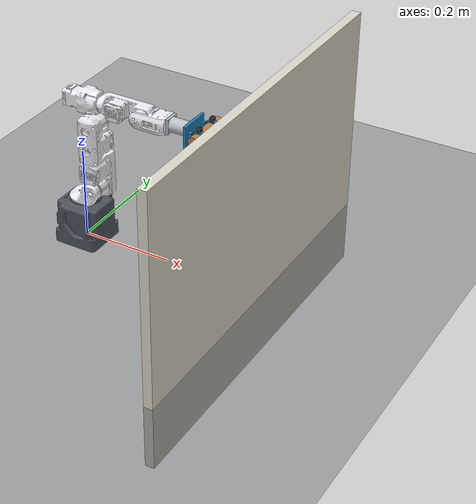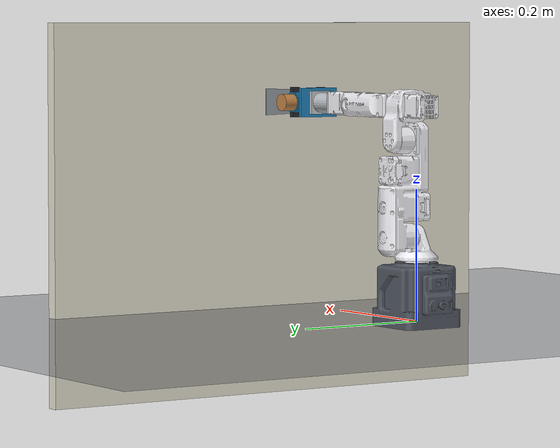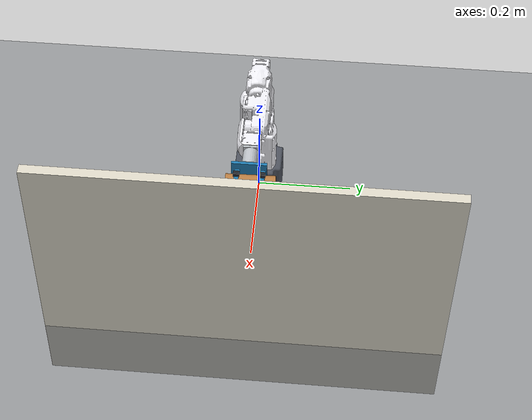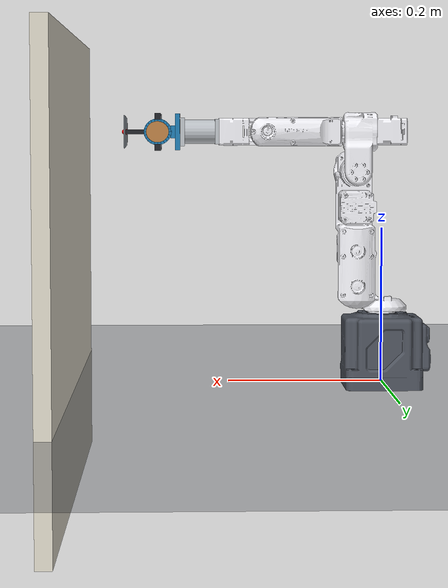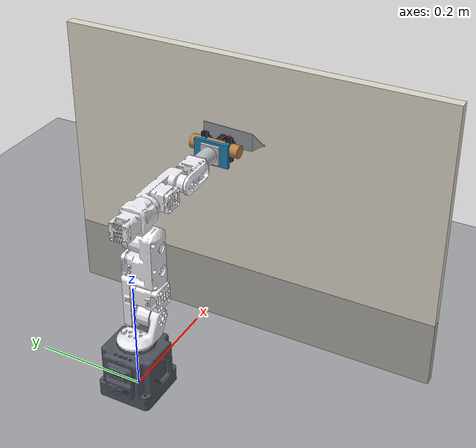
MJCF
<mujoco model="dummy_wall_trowel_SIM_ASSUMPTIONS_NOT_CALIBRATED">
  <!-- 由 tools/modeling/build_dummy_v2.py 生成，请勿手改。运动学 = V2 固件 DH；质量/惯量 = CAD 体积×估计密度 + 资料质量；执行器 = 资料额定值推算。均未经实机辨识。 -->
  <compiler angle="radian" meshdir="../../models/meshes_v2/" boundinertia="1e-07"/>

  <option integrator="implicitfast"/>

  <visual>
    <global offwidth="960" offheight="720"/>
  </visual>

  <default>
    <geom contype="0" conaffinity="0"/>
  </default>

  <asset>
    <mesh name="base_link" file="base_link.stl" scale="0.001 0.001 0.001" inertia="shell"/>
    <mesh name="link1" file="link1.stl" scale="0.001 0.001 0.001" inertia="shell"/>
    <mesh name="link2" file="link2.stl" scale="0.001 0.001 0.001" inertia="shell"/>
    <mesh name="link3" file="link3.stl" scale="0.001 0.001 0.001" inertia="shell"/>
    <mesh name="link4" file="link4.stl" scale="0.001 0.001 0.001" inertia="shell"/>
    <mesh name="link5" file="link5.stl" scale="0.001 0.001 0.001" inertia="shell"/>
    <mesh name="link6" file="link6.stl" scale="0.001 0.001 0.001" inertia="shell"/>
    <mesh name="handle_geom_mesh" vertex="0.0426612 0.041 0 0.0426612 0.0408909 0.00156631 0.0426612 0.0405656 0.00310583 0.0426612 0.0400295 0.0045922 0.0426612 0.0392918 0.006 0.0426612 0.0383653 0.00730514 0.0426612 0.0372656 0.00848528 0.0426612 0.0360117 0.00952024 0.0426612 0.034625 0.0103923 0.0426612 0.0331292 0.0110866 0.0426612 0.0315499 0.0115911 0.0426612 0.0299142 0.0118973 0.0426612 0.02825 0.012 0.0426612 0.0265858 0.0118973 0.0426612 0.0249501 0.0115911 0.0426612 0.0233708 0.0110866 0.0426612 0.021875 0.0103923 0.0426612 0.0204883 0.00952024 0.0426612 0.0192344 0.00848528 0.0426612 0.0181347 0.00730514 0.0426612 0.0172082 0.006 0.0426612 0.0164705 0.0045922 0.0426612 0.0159344 0.00310583 0.0426612 0.0156091 0.00156631 0.0426612 0.0155 1.46958e-18 0.0426612 0.0156091 -0.00156631 0.0426612 0.0159344 -0.00310583 0.0426612 0.0164705 -0.0045922 0.0426612 0.0172082 -0.006 0.0426612 0.0181347 -0.00730514 0.0426612 0.0192344 -0.00848528 0.0426612 0.0204883 -0.00952024 0.0426612 0.021875 -0.0103923 0.0426612 0.0233708 -0.0110866 0.0426612 0.0249501 -0.0115911 0.0426612 0.0265858 -0.0118973 0.0426612 0.02825 -0.012 0.0426612 0.0299142 -0.0118973 0.0426612 0.0315499 -0.0115911 0.0426612 0.0331292 -0.0110866 0.0426612 0.034625 -0.0103923 0.0426612 0.0360117 -0.00952024 0.0426612 0.0372656 -0.00848528 0.0426612 0.0383653 -0.00730514 0.0426612 0.0392918 -0.006 0.0426612 0.0400295 -0.0045922 0.0426612 0.0405656 -0.00310583 0.0426612 0.0408909 -0.00156631 -0.0523388 0.0425 0 -0.0523388 0.0423781 0.00172947 -0.0523388 0.0420144 0.00342935 -0.0523388 0.0414153 0.00507056 -0.0523388 0.0405909 0.006625 -0.0523388 0.0395553 0.00806609 -0.0523388 0.0383263 0.00936916 -0.0523388 0.0369249 0.0105119 -0.0523388 0.035375 0.0114748 -0.0523388 0.0337032 0.0122414 -0.0523388 0.0319382 0.0127985 -0.0523388 0.03011 0.0131366 -0.0523388 0.02825 0.01325 -0.0523388 0.02639 0.0131366 -0.0523388 0.0245618 0.0127985 -0.0523388 0.0227968 0.0122414 -0.0523388 0.021125 0.0114748 -0.0523388 0.0195751 0.0105119 -0.0523388 0.0181737 0.00936916 -0.0523388 0.0169447 0.00806609 -0.0523388 0.0159091 0.006625 -0.0523388 0.0150847 0.00507056 -0.0523388 0.0144856 0.00342935 -0.0523388 0.0141219 0.00172947 -0.0523388 0.014 1.62266e-18 -0.0523388 0.0141219 -0.00172947 -0.0523388 0.0144856 -0.00342935 -0.0523388 0.0150847 -0.00507056 -0.0523388 0.0159091 -0.006625 -0.0523388 0.0169447 -0.00806609 -0.0523388 0.0181737 -0.00936916 -0.0523388 0.0195751 -0.0105119 -0.0523388 0.021125 -0.0114748 -0.0523388 0.0227968 -0.0122414 -0.0523388 0.0245618 -0.0127985 -0.0523388 0.02639 -0.0131366 -0.0523388 0.02825 -0.01325 -0.0523388 0.03011 -0.0131366 -0.0523388 0.0319382 -0.0127985 -0.0523388 0.0337032 -0.0122414 -0.0523388 0.035375 -0.0114748 -0.0523388 0.0369249 -0.0105119 -0.0523388 0.0383263 -0.00936916 -0.0523388 0.0395553 -0.00806609 -0.0523388 0.0405909 -0.006625 -0.0523388 0.0414153 -0.00507056 -0.0523388 0.0420144 -0.00342935 -0.0523388 0.0423781 -0.00172947"/>
    <mesh name="clamp_0_0_mesh" vertex="-0.0315 0.0423999 0 -0.0315 0.0419178 0.00342071 -0.0315 0.0458999 0 -0.0315 0.0452985 0.00432657 -0.0225 0.0423999 0 -0.0225 0.0419178 0.00342071 -0.0225 0.0458999 0 -0.0225 0.0452985 0.00432657"/>
    <mesh name="clamp_0_1_mesh" vertex="-0.0315 0.0419178 0.00342071 -0.0315 0.0405042 0.0066083 -0.0315 0.0452985 0.00432657 -0.0315 0.0435353 0.0083583 -0.0225 0.0419178 0.00342071 -0.0225 0.0405042 0.0066083 -0.0225 0.0452985 0.00432657 -0.0225 0.0435353 0.0083583"/>
    <mesh name="clamp_0_2_mesh" vertex="-0.0315 0.0405042 0.0066083 -0.0315 0.0382555 0.00934554 -0.0315 0.0435353 0.0083583 -0.0315 0.0407304 0.0118204 -0.0225 0.0405042 0.0066083 -0.0225 0.0382555 0.00934554 -0.0225 0.0435353 0.0083583 -0.0225 0.0407304 0.0118204"/>
    <mesh name="clamp_0_3_mesh" vertex="-0.0315 0.0382555 0.00934554 -0.0315 0.035325 0.0114459 -0.0315 0.0407304 0.0118204 -0.0315 0.037075 0.014477 -0.0225 0.0382555 0.00934554 -0.0225 0.035325 0.0114459 -0.0225 0.0407304 0.0118204 -0.0225 0.037075 0.014477"/>
    <mesh name="clamp_0_4_mesh" vertex="-0.0315 0.035325 0.0114459 -0.0315 0.0319123 0.0127663 -0.0315 0.037075 0.014477 -0.0315 0.0328181 0.016147 -0.0225 0.035325 0.0114459 -0.0225 0.0319123 0.0127663 -0.0225 0.037075 0.014477 -0.0225 0.0328181 0.016147"/>
    <mesh name="clamp_0_5_mesh" vertex="-0.0315 0.0319123 0.0127663 -0.0315 0.0284198 0.0132156 -0.0315 0.0328181 0.016147 -0.0315 0.0284618 0.0167154 -0.0225 0.0319123 0.0127663 -0.0225 0.0284198 0.0132156 -0.0225 0.0328181 0.016147 -0.0225 0.0284618 0.0167154"/>
    <mesh name="clamp_0_6_mesh" vertex="-0.0315 0.0280802 0.0132156 -0.0315 0.0245877 0.0127663 -0.0315 0.0280382 0.0167154 -0.0315 0.0236819 0.016147 -0.0225 0.0280802 0.0132156 -0.0225 0.0245877 0.0127663 -0.0225 0.0280382 0.0167154 -0.0225 0.0236819 0.016147"/>
    <mesh name="clamp_0_7_mesh" vertex="-0.0315 0.0245877 0.0127663 -0.0315 0.021175 0.0114459 -0.0315 0.0236819 0.016147 -0.0315 0.019425 0.014477 -0.0225 0.0245877 0.0127663 -0.0225 0.021175 0.0114459 -0.0225 0.0236819 0.016147 -0.0225 0.019425 0.014477"/>
    <mesh name="clamp_0_8_mesh" vertex="-0.0315 0.021175 0.0114459 -0.0315 0.0182445 0.00934554 -0.0315 0.019425 0.014477 -0.0315 0.0157696 0.0118204 -0.0225 0.021175 0.0114459 -0.0225 0.0182445 0.00934554 -0.0225 0.019425 0.014477 -0.0225 0.0157696 0.0118204"/>
    <mesh name="clamp_0_9_mesh" vertex="-0.0315 0.0182445 0.00934554 -0.0315 0.0159958 0.0066083 -0.0315 0.0157696 0.0118204 -0.0315 0.0129647 0.0083583 -0.0225 0.0182445 0.00934554 -0.0225 0.0159958 0.0066083 -0.0225 0.0157696 0.0118204 -0.0225 0.0129647 0.0083583"/>
    <mesh name="clamp_0_10_mesh" vertex="-0.0315 0.0159958 0.0066083 -0.0315 0.0145822 0.00342071 -0.0315 0.0129647 0.0083583 -0.0315 0.0112015 0.00432657 -0.0225 0.0159958 0.0066083 -0.0225 0.0145822 0.00342071 -0.0225 0.0129647 0.0083583 -0.0225 0.0112015 0.00432657"/>
    <mesh name="clamp_0_11_mesh" vertex="-0.0315 0.0145822 0.00342071 -0.0315 0.0141001 1.61857e-18 -0.0315 0.0112015 0.00432657 -0.0315 0.0106001 2.04719e-18 -0.0225 0.0145822 0.00342071 -0.0225 0.0141001 1.61857e-18 -0.0225 0.0112015 0.00432657 -0.0225 0.0106001 2.04719e-18"/>
    <mesh name="clamp_0_12_mesh" vertex="-0.0315 0.0141001 1.61857e-18 -0.0315 0.0145822 -0.00342071 -0.0315 0.0106001 2.04719e-18 -0.0315 0.0112015 -0.00432657 -0.0225 0.0141001 1.61857e-18 -0.0225 0.0145822 -0.00342071 -0.0225 0.0106001 2.04719e-18 -0.0225 0.0112015 -0.00432657"/>
    <mesh name="clamp_0_13_mesh" vertex="-0.0315 0.0145822 -0.00342071 -0.0315 0.0159958 -0.0066083 -0.0315 0.0112015 -0.00432657 -0.0315 0.0129647 -0.0083583 -0.0225 0.0145822 -0.00342071 -0.0225 0.0159958 -0.0066083 -0.0225 0.0112015 -0.00432657 -0.0225 0.0129647 -0.0083583"/>
    <mesh name="clamp_0_14_mesh" vertex="-0.0315 0.0159958 -0.0066083 -0.0315 0.0182445 -0.00934554 -0.0315 0.0129647 -0.0083583 -0.0315 0.0157696 -0.0118204 -0.0225 0.0159958 -0.0066083 -0.0225 0.0182445 -0.00934554 -0.0225 0.0129647 -0.0083583 -0.0225 0.0157696 -0.0118204"/>
    <mesh name="clamp_0_15_mesh" vertex="-0.0315 0.0182445 -0.00934554 -0.0315 0.021175 -0.0114459 -0.0315 0.0157696 -0.0118204 -0.0315 0.019425 -0.014477 -0.0225 0.0182445 -0.00934554 -0.0225 0.021175 -0.0114459 -0.0225 0.0157696 -0.0118204 -0.0225 0.019425 -0.014477"/>
    <mesh name="clamp_0_16_mesh" vertex="-0.0315 0.021175 -0.0114459 -0.0315 0.0245877 -0.0127663 -0.0315 0.019425 -0.014477 -0.0315 0.0236819 -0.016147 -0.0225 0.021175 -0.0114459 -0.0225 0.0245877 -0.0127663 -0.0225 0.019425 -0.014477 -0.0225 0.0236819 -0.016147"/>
    <mesh name="clamp_0_17_mesh" vertex="-0.0315 0.0245877 -0.0127663 -0.0315 0.0280802 -0.0132156 -0.0315 0.0236819 -0.016147 -0.0315 0.0280382 -0.0167154 -0.0225 0.0245877 -0.0127663 -0.0225 0.0280802 -0.0132156 -0.0225 0.0236819 -0.016147 -0.0225 0.0280382 -0.0167154"/>
    <mesh name="clamp_0_18_mesh" vertex="-0.0315 0.0284198 -0.0132156 -0.0315 0.0319123 -0.0127663 -0.0315 0.0284618 -0.0167154 -0.0315 0.0328181 -0.016147 -0.0225 0.0284198 -0.0132156 -0.0225 0.0319123 -0.0127663 -0.0225 0.0284618 -0.0167154 -0.0225 0.0328181 -0.016147"/>
    <mesh name="clamp_0_19_mesh" vertex="-0.0315 0.0319123 -0.0127663 -0.0315 0.035325 -0.0114459 -0.0315 0.0328181 -0.016147 -0.0315 0.037075 -0.014477 -0.0225 0.0319123 -0.0127663 -0.0225 0.035325 -0.0114459 -0.0225 0.0328181 -0.016147 -0.0225 0.037075 -0.014477"/>
    <mesh name="clamp_0_20_mesh" vertex="-0.0315 0.035325 -0.0114459 -0.0315 0.0382555 -0.00934554 -0.0315 0.037075 -0.014477 -0.0315 0.0407304 -0.0118204 -0.0225 0.035325 -0.0114459 -0.0225 0.0382555 -0.00934554 -0.0225 0.037075 -0.014477 -0.0225 0.0407304 -0.0118204"/>
    <mesh name="clamp_0_21_mesh" vertex="-0.0315 0.0382555 -0.00934554 -0.0315 0.0405042 -0.0066083 -0.0315 0.0407304 -0.0118204 -0.0315 0.0435353 -0.0083583 -0.0225 0.0382555 -0.00934554 -0.0225 0.0405042 -0.0066083 -0.0225 0.0407304 -0.0118204 -0.0225 0.0435353 -0.0083583"/>
    <mesh name="clamp_0_22_mesh" vertex="-0.0315 0.0405042 -0.0066083 -0.0315 0.0419178 -0.00342071 -0.0315 0.0435353 -0.0083583 -0.0315 0.0452985 -0.00432657 -0.0225 0.0405042 -0.0066083 -0.0225 0.0419178 -0.00342071 -0.0225 0.0435353 -0.0083583 -0.0225 0.0452985 -0.00432657"/>
    <mesh name="clamp_0_23_mesh" vertex="-0.0315 0.0419178 -0.00342071 -0.0315 0.0423999 -3.23713e-18 -0.0315 0.0452985 -0.00432657 -0.0315 0.0458999 -4.09438e-18 -0.0225 0.0419178 -0.00342071 -0.0225 0.0423999 -3.23713e-18 -0.0225 0.0452985 -0.00432657 -0.0225 0.0458999 -4.09438e-18"/>
    <mesh name="clamp_1_0_mesh" vertex="0.0175 0.0416262 0 0.0175 0.0411704 0.00325384 0.0175 0.0451262 0 0.0175 0.0445512 0.0041597 0.0265 0.0416262 0 0.0265 0.0411704 0.00325384 0.0265 0.0451262 0 0.0265 0.0445512 0.0041597"/>
    <mesh name="clamp_1_1_mesh" vertex="0.0175 0.0411704 0.00325384 0.0175 0.0398342 0.00628593 0.0175 0.0445512 0.0041597 0.0175 0.0428652 0.00803593 0.0265 0.0411704 0.00325384 0.0265 0.0398342 0.00628593 0.0265 0.0445512 0.0041597 0.0265 0.0428652 0.00803593"/>
    <mesh name="clamp_1_2_mesh" vertex="0.0175 0.0398342 0.00628593 0.0175 0.0377084 0.00888965 0.0175 0.0428652 0.00803593 0.0175 0.0401833 0.0113645 0.0265 0.0398342 0.00628593 0.0265 0.0377084 0.00888965 0.0265 0.0428652 0.00803593 0.0265 0.0401833 0.0113645"/>
    <mesh name="clamp_1_3_mesh" vertex="0.0175 0.0377084 0.00888965 0.0175 0.0349381 0.0108875 0.0175 0.0401833 0.0113645 0.0175 0.0366881 0.0139186 0.0265 0.0377084 0.00888965 0.0265 0.0349381 0.0108875 0.0265 0.0401833 0.0113645 0.0265 0.0366881 0.0139186"/>
    <mesh name="clamp_1_4_mesh" vertex="0.0175 0.0349381 0.0108875 0.0175 0.031712 0.0121435 0.0175 0.0366881 0.0139186 0.0175 0.0326179 0.0155242 0.0265 0.0349381 0.0108875 0.0265 0.031712 0.0121435 0.0265 0.0366881 0.0139186 0.0265 0.0326179 0.0155242"/>
    <mesh name="clamp_1_5_mesh" vertex="0.0175 0.031712 0.0121435 0.0175 0.0284105 0.012571 0.0175 0.0326179 0.0155242 0.0175 0.0284525 0.0160707 0.0265 0.031712 0.0121435 0.0265 0.0284105 0.012571 0.0265 0.0326179 0.0155242 0.0265 0.0284525 0.0160707"/>
    <mesh name="clamp_1_6_mesh" vertex="0.0175 0.0280895 0.012571 0.0175 0.024788 0.0121435 0.0175 0.0280475 0.0160707 0.0175 0.0238821 0.0155242 0.0265 0.0280895 0.012571 0.0265 0.024788 0.0121435 0.0265 0.0280475 0.0160707 0.0265 0.0238821 0.0155242"/>
    <mesh name="clamp_1_7_mesh" vertex="0.0175 0.024788 0.0121435 0.0175 0.0215619 0.0108875 0.0175 0.0238821 0.0155242 0.0175 0.0198119 0.0139186 0.0265 0.024788 0.0121435 0.0265 0.0215619 0.0108875 0.0265 0.0238821 0.0155242 0.0265 0.0198119 0.0139186"/>
    <mesh name="clamp_1_8_mesh" vertex="0.0175 0.0215619 0.0108875 0.0175 0.0187916 0.00888965 0.0175 0.0198119 0.0139186 0.0175 0.0163167 0.0113645 0.0265 0.0215619 0.0108875 0.0265 0.0187916 0.00888965 0.0265 0.0198119 0.0139186 0.0265 0.0163167 0.0113645"/>
    <mesh name="clamp_1_9_mesh" vertex="0.0175 0.0187916 0.00888965 0.0175 0.0166658 0.00628593 0.0175 0.0163167 0.0113645 0.0175 0.0136348 0.00803593 0.0265 0.0187916 0.00888965 0.0265 0.0166658 0.00628593 0.0265 0.0163167 0.0113645 0.0265 0.0136348 0.00803593"/>
    <mesh name="clamp_1_10_mesh" vertex="0.0175 0.0166658 0.00628593 0.0175 0.0153296 0.00325384 0.0175 0.0136348 0.00803593 0.0175 0.0119488 0.0041597 0.0265 0.0166658 0.00628593 0.0265 0.0153296 0.00325384 0.0265 0.0136348 0.00803593 0.0265 0.0119488 0.0041597"/>
    <mesh name="clamp_1_11_mesh" vertex="0.0175 0.0153296 0.00325384 0.0175 0.0148738 1.53961e-18 0.0175 0.0119488 0.0041597 0.0175 0.0113738 1.96823e-18 0.0265 0.0153296 0.00325384 0.0265 0.0148738 1.53961e-18 0.0265 0.0119488 0.0041597 0.0265 0.0113738 1.96823e-18"/>
    <mesh name="clamp_1_12_mesh" vertex="0.0175 0.0148738 1.53961e-18 0.0175 0.0153296 -0.00325384 0.0175 0.0113738 1.96823e-18 0.0175 0.0119488 -0.0041597 0.0265 0.0148738 1.53961e-18 0.0265 0.0153296 -0.00325384 0.0265 0.0113738 1.96823e-18 0.0265 0.0119488 -0.0041597"/>
    <mesh name="clamp_1_13_mesh" vertex="0.0175 0.0153296 -0.00325384 0.0175 0.0166658 -0.00628593 0.0175 0.0119488 -0.0041597 0.0175 0.0136348 -0.00803593 0.0265 0.0153296 -0.00325384 0.0265 0.0166658 -0.00628593 0.0265 0.0119488 -0.0041597 0.0265 0.0136348 -0.00803593"/>
    <mesh name="clamp_1_14_mesh" vertex="0.0175 0.0166658 -0.00628593 0.0175 0.0187916 -0.00888965 0.0175 0.0136348 -0.00803593 0.0175 0.0163167 -0.0113645 0.0265 0.0166658 -0.00628593 0.0265 0.0187916 -0.00888965 0.0265 0.0136348 -0.00803593 0.0265 0.0163167 -0.0113645"/>
    <mesh name="clamp_1_15_mesh" vertex="0.0175 0.0187916 -0.00888965 0.0175 0.0215619 -0.0108875 0.0175 0.0163167 -0.0113645 0.0175 0.0198119 -0.0139186 0.0265 0.0187916 -0.00888965 0.0265 0.0215619 -0.0108875 0.0265 0.0163167 -0.0113645 0.0265 0.0198119 -0.0139186"/>
    <mesh name="clamp_1_16_mesh" vertex="0.0175 0.0215619 -0.0108875 0.0175 0.024788 -0.0121435 0.0175 0.0198119 -0.0139186 0.0175 0.0238821 -0.0155242 0.0265 0.0215619 -0.0108875 0.0265 0.024788 -0.0121435 0.0265 0.0198119 -0.0139186 0.0265 0.0238821 -0.0155242"/>
    <mesh name="clamp_1_17_mesh" vertex="0.0175 0.024788 -0.0121435 0.0175 0.0280895 -0.012571 0.0175 0.0238821 -0.0155242 0.0175 0.0280475 -0.0160707 0.0265 0.024788 -0.0121435 0.0265 0.0280895 -0.012571 0.0265 0.0238821 -0.0155242 0.0265 0.0280475 -0.0160707"/>
    <mesh name="clamp_1_18_mesh" vertex="0.0175 0.0284105 -0.012571 0.0175 0.031712 -0.0121435 0.0175 0.0284525 -0.0160707 0.0175 0.0326179 -0.0155242 0.0265 0.0284105 -0.012571 0.0265 0.031712 -0.0121435 0.0265 0.0284525 -0.0160707 0.0265 0.0326179 -0.0155242"/>
    <mesh name="clamp_1_19_mesh" vertex="0.0175 0.031712 -0.0121435 0.0175 0.0349381 -0.0108875 0.0175 0.0326179 -0.0155242 0.0175 0.0366881 -0.0139186 0.0265 0.031712 -0.0121435 0.0265 0.0349381 -0.0108875 0.0265 0.0326179 -0.0155242 0.0265 0.0366881 -0.0139186"/>
    <mesh name="clamp_1_20_mesh" vertex="0.0175 0.0349381 -0.0108875 0.0175 0.0377084 -0.00888965 0.0175 0.0366881 -0.0139186 0.0175 0.0401833 -0.0113645 0.0265 0.0349381 -0.0108875 0.0265 0.0377084 -0.00888965 0.0265 0.0366881 -0.0139186 0.0265 0.0401833 -0.0113645"/>
    <mesh name="clamp_1_21_mesh" vertex="0.0175 0.0377084 -0.00888965 0.0175 0.0398342 -0.00628593 0.0175 0.0401833 -0.0113645 0.0175 0.0428652 -0.00803593 0.0265 0.0377084 -0.00888965 0.0265 0.0398342 -0.00628593 0.0265 0.0401833 -0.0113645 0.0265 0.0428652 -0.00803593"/>
    <mesh name="clamp_1_22_mesh" vertex="0.0175 0.0398342 -0.00628593 0.0175 0.0411704 -0.00325384 0.0175 0.0428652 -0.00803593 0.0175 0.0445512 -0.0041597 0.0265 0.0398342 -0.00628593 0.0265 0.0411704 -0.00325384 0.0265 0.0428652 -0.00803593 0.0265 0.0445512 -0.0041597"/>
    <mesh name="clamp_1_23_mesh" vertex="0.0175 0.0411704 -0.00325384 0.0175 0.0416262 -3.07922e-18 0.0175 0.0445512 -0.0041597 0.0175 0.0451262 -3.93647e-18 0.0265 0.0411704 -0.00325384 0.0265 0.0416262 -3.07922e-18 0.0265 0.0445512 -0.0041597 0.0265 0.0451262 -3.93647e-18"/>
    <mesh name="blade_geom_mesh" vertex="-0.0543388 0 -0.021 0.0456612 0 -0.0175 0.0456612 0 0.0175 -0.0543388 0 0.021 -0.0543388 0.001 -0.021 0.0456612 0.001 -0.0175 0.0456612 0.001 0.0175 -0.0543388 0.001 0.021"/>
    <mesh name="blade_tip_geom_mesh" vertex="0.0456612 0 -0.0175 0.0696612 0 0 0.0456612 0 0.0175 0.0456612 0.001 -0.0175 0.0696612 0.001 0 0.0456612 0.001 0.0175"/>
  </asset>

  <worldbody>
    <geom name="floor" size="1 1 0.01" pos="0 0 -0.0075" type="plane" rgba="0.18 0.2 0.24 1"/>
    <camera name="d435" quat="-0.376113 -0.227088 0.464312 0.769015" pos="-0.05 0.35 0.45" fovy="58"/>
    <light pos="0.3 -0.6 1.2" dir="-0.17609 0.440225 -0.880451" diffuse="0.8 0.8 0.8"/>
    <body name="base_link" gravcomp="1">
      <inertial pos="-0.000831234 0.000101811 0.0463087" quat="0.729165 0.122609 0.113131 0.663692" mass="0.872292" diaginertia="0.0010581 0.000994058 0.000934899"/>
      <geom name="base_link_visual" type="mesh" group="1" rgba="0.3 0.32 0.36 1" density="0" mesh="base_link"/>
      <body name="link1" gravcomp="1">
        <inertial pos="0.0168766 -0.00579915 0.105385" quat="0.601902 0.335085 0.143873 0.710446" mass="0.329271" diaginertia="0.000298153 0.000296753 5.29397e-05"/>
        <joint name="Joint1" range="-2.96706 2.96706" actuatorfrcrange="-8.3 8.3" armature="0.0085" damping="0.3"/>
        <geom name="link1_visual" type="mesh" group="1" rgba="0.93 0.93 0.95 1" density="0" mesh="link1"/>
        <body name="link2" pos="0.035 0 0.1265" gravcomp="1">
          <inertial pos="-1.90944e-05 -0.000875645 0.0716854" quat="0.998845 0.0479774 0.000122474 0.00257655" mass="1.23235" diaginertia="0.00419905 0.00417321 0.000428951"/>
          <joint name="Joint2" range="-1.309 1.5708" actuatorfrcrange="-8.3 8.3" armature="0.0135" damping="0.3" axis="0 1 0"/>
          <geom name="link2_visual" type="mesh" group="1" rgba="0.93 0.93 0.95 1" density="0" mesh="link2"/>
          <body name="link3" pos="0 0 0.146" gravcomp="1">
            <inertial pos="-0.0150739 0.00252776 0.038862" quat="0.698335 -0.0762693 -0.226163 0.674805" mass="0.625897" diaginertia="0.000608187 0.000546193 0.000207754"/>
            <joint name="Joint3" range="-1.5708 1.5708" actuatorfrcrange="-8.3 8.3" armature="0.0085" damping="0.3" axis="0 1 0"/>
            <geom name="link3_visual" type="mesh" group="1" rgba="0.93 0.93 0.95 1" density="0" mesh="link3"/>
            <body name="link4" pos="0 0 0.052" gravcomp="1">
              <inertial pos="0.0623124 0.000673193 0.000206517" quat="-0.00704575 0.707107 0.00755256 0.707031" mass="0.469893" diaginertia="0.00101398 0.00100983 9.00411e-05"/>
              <joint name="Joint4" range="-3.14159 3.14159" actuatorfrcrange="-6 6" armature="0.00275" damping="0.3" axis="1 0 0"/>
              <geom name="link4_visual" type="mesh" group="1" rgba="0.93 0.93 0.95 1" density="0" mesh="link4"/>
              <body name="link5" pos="0.117 0 0" gravcomp="1">
                <inertial pos="0.0260004 -0.00643627 0.000227449" quat="-0.237688 0.705385 -0.0477418 0.666076" mass="0.197877" diaginertia="0.000132156 0.00013144 3.28586e-05"/>
                <joint name="Joint5" range="-1.74533 2.0944" actuatorfrcrange="-3.3 3.3" armature="0.0015" damping="0.3" axis="0 1 0"/>
                <geom name="link5_visual" type="mesh" group="1" rgba="0.93 0.93 0.95 1" density="0" mesh="link5"/>
                <body name="link6" gravcomp="1">
                  <inertial pos="0.0649063 0 0" quat="0.5 0.5 0.5 0.5" mass="0.00262028" diaginertia="1e-07 1e-07 1e-07"/>
                  <joint name="Joint6" range="-12.5664 12.5664" actuatorfrcrange="-0.9 0.9" armature="0.00054" damping="0.3" axis="1 0 0"/>
                  <geom name="link6_visual" type="mesh" group="1" rgba="0.75 0.75 0.78 1" density="0" mesh="link6"/>
                  <site name="shaft_tip" size="0.003" pos="0.07341 0 0" rgba="1 0.5 0 1"/>
                  <site name="fw_end" size="0.004" pos="0.0755 0 0" quat="0.707107 0 0.707107 0" rgba="0 0.8 0.2 1"/>
                  <body name="tool_mount" pos="0.11041 0 0" quat="0.707107 0 0 -0.707107" gravcomp="1">
                    <geom name="j6_output_flange" size="0.013 0.001" pos="0 -0.007 0" quat="0.707107 0.707107 0 0" type="cylinder" rgba="0.13 0.14 0.16 1" mass="0.03"/>
                    <geom name="existing_adapter" size="0.018 0.003 0.018" pos="0 -0.003 0" type="box" rgba="0.73 0.75 0.77 1" mass="0.016"/>
                    <geom name="adapter_lug_0" size="0.004 0.002 0.004" pos="-0.014 0.002 -0.014" type="box" rgba="0.73 0.75 0.77 1" mass="0.001"/>
                    <geom name="adapter_lug_1" size="0.004 0.002 0.004" pos="-0.014 0.002 0.014" type="box" rgba="0.73 0.75 0.77 1" mass="0.001"/>
                    <geom name="adapter_lug_2" size="0.004 0.002 0.004" pos="0.014 0.002 -0.014" type="box" rgba="0.73 0.75 0.77 1" mass="0.001"/>
                    <geom name="adapter_lug_3" size="0.004 0.002 0.004" pos="0.014 0.002 0.014" type="box" rgba="0.73 0.75 0.77 1" mass="0.001"/>
                    <site name="output_flange_frame" size="0.002"/>
                    <body name="trowel" gravcomp="1">
                      <geom name="holder_geom" size="0.034 0.003 0.023" pos="0 0.003 0" type="box" rgba="0.12 0.48 0.69 1" mass="0.0105"/>
                      <geom name="clamp_0_0" type="mesh" friction="0.6" solref="0.004" rgba="0.12 0.48 0.69 1" mass="0.000364583" mesh="clamp_0_0_mesh"/>
                      <geom name="clamp_0_1" type="mesh" friction="0.6" solref="0.004" rgba="0.12 0.48 0.69 1" mass="0.000364583" mesh="clamp_0_1_mesh"/>
                      <geom name="clamp_0_2" type="mesh" friction="0.6" solref="0.004" rgba="0.12 0.48 0.69 1" mass="0.000364583" mesh="clamp_0_2_mesh"/>
                      <geom name="clamp_0_3" type="mesh" friction="0.6" solref="0.004" rgba="0.12 0.48 0.69 1" mass="0.000364583" mesh="clamp_0_3_mesh"/>
                      <geom name="clamp_0_4" type="mesh" friction="0.6" solref="0.004" rgba="0.12 0.48 0.69 1" mass="0.000364583" mesh="clamp_0_4_mesh"/>
                      <geom name="clamp_0_5" type="mesh" friction="0.6" solref="0.004" rgba="0.12 0.48 0.69 1" mass="0.000364583" mesh="clamp_0_5_mesh"/>
                      <geom name="clamp_0_6" type="mesh" friction="0.6" solref="0.004" rgba="0.12 0.48 0.69 1" mass="0.000364583" mesh="clamp_0_6_mesh"/>
                      <geom name="clamp_0_7" type="mesh" friction="0.6" solref="0.004" rgba="0.12 0.48 0.69 1" mass="0.000364583" mesh="clamp_0_7_mesh"/>
                      <geom name="clamp_0_8" type="mesh" friction="0.6" solref="0.004" rgba="0.12 0.48 0.69 1" mass="0.000364583" mesh="clamp_0_8_mesh"/>
                      <geom name="clamp_0_9" type="mesh" friction="0.6" solref="0.004" rgba="0.12 0.48 0.69 1" mass="0.000364583" mesh="clamp_0_9_mesh"/>
                      <geom name="clamp_0_10" type="mesh" friction="0.6" solref="0.004" rgba="0.12 0.48 0.69 1" mass="0.000364583" mesh="clamp_0_10_mesh"/>
                      <geom name="clamp_0_11" type="mesh" friction="0.6" solref="0.004" rgba="0.12 0.48 0.69 1" mass="0.000364583" mesh="clamp_0_11_mesh"/>
                      <geom name="clamp_0_12" type="mesh" friction="0.6" solref="0.004" rgba="0.12 0.48 0.69 1" mass="0.000364583" mesh="clamp_0_12_mesh"/>
                      <geom name="clamp_0_13" type="mesh" friction="0.6" solref="0.004" rgba="0.12 0.48 0.69 1" mass="0.000364583" mesh="clamp_0_13_mesh"/>
                      <geom name="clamp_0_14" type="mesh" friction="0.6" solref="0.004" rgba="0.12 0.48 0.69 1" mass="0.000364583" mesh="clamp_0_14_mesh"/>
                      <geom name="clamp_0_15" type="mesh" friction="0.6" solref="0.004" rgba="0.12 0.48 0.69 1" mass="0.000364583" mesh="clamp_0_15_mesh"/>
                      <geom name="clamp_0_16" type="mesh" friction="0.6" solref="0.004" rgba="0.12 0.48 0.69 1" mass="0.000364583" mesh="clamp_0_16_mesh"/>
                      <geom name="clamp_0_17" type="mesh" friction="0.6" solref="0.004" rgba="0.12 0.48 0.69 1" mass="0.000364583" mesh="clamp_0_17_mesh"/>
                      <geom name="clamp_0_18" type="mesh" friction="0.6" solref="0.004" rgba="0.12 0.48 0.69 1" mass="0.000364583" mesh="clamp_0_18_mesh"/>
                      <geom name="clamp_0_19" type="mesh" friction="0.6" solref="0.004" rgba="0.12 0.48 0.69 1" mass="0.000364583" mesh="clamp_0_19_mesh"/>
                      <geom name="clamp_0_20" type="mesh" friction="0.6" solref="0.004" rgba="0.12 0.48 0.69 1" mass="0.000364583" mesh="clamp_0_20_mesh"/>
                      <geom name="clamp_0_21" type="mesh" friction="0.6" solref="0.004" rgba="0.12 0.48 0.69 1" mass="0.000364583" mesh="clamp_0_21_mesh"/>
                      <geom name="clamp_0_22" type="mesh" friction="0.6" solref="0.004" rgba="0.12 0.48 0.69 1" mass="0.000364583" mesh="clamp_0_22_mesh"/>
                      <geom name="clamp_0_23" type="mesh" friction="0.6" solref="0.004" rgba="0.12 0.48 0.69 1" mass="0.000364583" mesh="clamp_0_23_mesh"/>
                      <geom name="clamp_support_0" size="0.0045 0.00280004 0.008" pos="-0.027 0.00880004 0" type="box" rgba="0.12 0.48 0.69 1" mass="0.0035"/>
                      <geom name="clamp_ear_0_-1" size="0.006 0.004 0.004" pos="-0.027 0.02825 -0.0197166" type="box" rgba="0.13 0.14 0.16 1" mass="0"/>
                      <geom name="clamp_ear_0_1" size="0.006 0.004 0.004" pos="-0.027 0.02825 0.0197166" type="box" rgba="0.13 0.14 0.16 1" mass="0"/>
                      <geom name="clamp_1_0" type="mesh" friction="0.6" solref="0.004" rgba="0.12 0.48 0.69 1" mass="0.000364583" mesh="clamp_1_0_mesh"/>
                      <geom name="clamp_1_1" type="mesh" friction="0.6" solref="0.004" rgba="0.12 0.48 0.69 1" mass="0.000364583" mesh="clamp_1_1_mesh"/>
                      <geom name="clamp_1_2" type="mesh" friction="0.6" solref="0.004" rgba="0.12 0.48 0.69 1" mass="0.000364583" mesh="clamp_1_2_mesh"/>
                      <geom name="clamp_1_3" type="mesh" friction="0.6" solref="0.004" rgba="0.12 0.48 0.69 1" mass="0.000364583" mesh="clamp_1_3_mesh"/>
                      <geom name="clamp_1_4" type="mesh" friction="0.6" solref="0.004" rgba="0.12 0.48 0.69 1" mass="0.000364583" mesh="clamp_1_4_mesh"/>
                      <geom name="clamp_1_5" type="mesh" friction="0.6" solref="0.004" rgba="0.12 0.48 0.69 1" mass="0.000364583" mesh="clamp_1_5_mesh"/>
                      <geom name="clamp_1_6" type="mesh" friction="0.6" solref="0.004" rgba="0.12 0.48 0.69 1" mass="0.000364583" mesh="clamp_1_6_mesh"/>
                      <geom name="clamp_1_7" type="mesh" friction="0.6" solref="0.004" rgba="0.12 0.48 0.69 1" mass="0.000364583" mesh="clamp_1_7_mesh"/>
                      <geom name="clamp_1_8" type="mesh" friction="0.6" solref="0.004" rgba="0.12 0.48 0.69 1" mass="0.000364583" mesh="clamp_1_8_mesh"/>
                      <geom name="clamp_1_9" type="mesh" friction="0.6" solref="0.004" rgba="0.12 0.48 0.69 1" mass="0.000364583" mesh="clamp_1_9_mesh"/>
                      <geom name="clamp_1_10" type="mesh" friction="0.6" solref="0.004" rgba="0.12 0.48 0.69 1" mass="0.000364583" mesh="clamp_1_10_mesh"/>
                      <geom name="clamp_1_11" type="mesh" friction="0.6" solref="0.004" rgba="0.12 0.48 0.69 1" mass="0.000364583" mesh="clamp_1_11_mesh"/>
                      <geom name="clamp_1_12" type="mesh" friction="0.6" solref="0.004" rgba="0.12 0.48 0.69 1" mass="0.000364583" mesh="clamp_1_12_mesh"/>
                      <geom name="clamp_1_13" type="mesh" friction="0.6" solref="0.004" rgba="0.12 0.48 0.69 1" mass="0.000364583" mesh="clamp_1_13_mesh"/>
                      <geom name="clamp_1_14" type="mesh" friction="0.6" solref="0.004" rgba="0.12 0.48 0.69 1" mass="0.000364583" mesh="clamp_1_14_mesh"/>
                      <geom name="clamp_1_15" type="mesh" friction="0.6" solref="0.004" rgba="0.12 0.48 0.69 1" mass="0.000364583" mesh="clamp_1_15_mesh"/>
                      <geom name="clamp_1_16" type="mesh" friction="0.6" solref="0.004" rgba="0.12 0.48 0.69 1" mass="0.000364583" mesh="clamp_1_16_mesh"/>
                      <geom name="clamp_1_17" type="mesh" friction="0.6" solref="0.004" rgba="0.12 0.48 0.69 1" mass="0.000364583" mesh="clamp_1_17_mesh"/>
                      <geom name="clamp_1_18" type="mesh" friction="0.6" solref="0.004" rgba="0.12 0.48 0.69 1" mass="0.000364583" mesh="clamp_1_18_mesh"/>
                      <geom name="clamp_1_19" type="mesh" friction="0.6" solref="0.004" rgba="0.12 0.48 0.69 1" mass="0.000364583" mesh="clamp_1_19_mesh"/>
                      <geom name="clamp_1_20" type="mesh" friction="0.6" solref="0.004" rgba="0.12 0.48 0.69 1" mass="0.000364583" mesh="clamp_1_20_mesh"/>
                      <geom name="clamp_1_21" type="mesh" friction="0.6" solref="0.004" rgba="0.12 0.48 0.69 1" mass="0.000364583" mesh="clamp_1_21_mesh"/>
                      <geom name="clamp_1_22" type="mesh" friction="0.6" solref="0.004" rgba="0.12 0.48 0.69 1" mass="0.000364583" mesh="clamp_1_22_mesh"/>
                      <geom name="clamp_1_23" type="mesh" friction="0.6" solref="0.004" rgba="0.12 0.48 0.69 1" mass="0.000364583" mesh="clamp_1_23_mesh"/>
                      <geom name="clamp_support_1" size="0.0045 0.00318689 0.008" pos="0.022 0.00918689 0" type="box" rgba="0.12 0.48 0.69 1" mass="0.0035"/>
                      <geom name="clamp_ear_1_-1" size="0.006 0.004 0.004" pos="0.022 0.02825 -0.0190719" type="box" rgba="0.13 0.14 0.16 1" mass="0"/>
                      <geom name="clamp_ear_1_1" size="0.006 0.004 0.004" pos="0.022 0.02825 0.0190719" type="box" rgba="0.13 0.14 0.16 1" mass="0"/>
                      <site name="load_cell" size="0.004" rgba="0.2 0.6 1 1"/>
                      <body name="trowel_body" gravcomp="1">
                        <geom name="handle_geom" type="mesh" friction="0.6" solref="0.004" rgba="0.72 0.49 0.26 1" mass="0.032" mesh="handle_geom_mesh"/>
                        <geom name="neck_geom" size="0.005 0.0143237 0.003" pos="-0.0113388 0.0551763 0" type="box" rgba="0.13 0.14 0.16 1" mass="0.0096"/>
                        <site name="handle_center" size="0.002" pos="0 0.02825 0"/>
                        <body name="blade" pos="0 0.0695 0" gravcomp="1">
                          <geom name="blade_geom" type="mesh" contype="2" friction="0.6" solref="0.004" rgba="0.55 0.58 0.61 1" mass="0.031488" mesh="blade_geom_mesh"/>
                          <geom name="blade_tip_geom" type="mesh" contype="2" friction="0.6" solref="0.004" rgba="0.55 0.58 0.61 1" mass="0.006912" mesh="blade_tip_geom_mesh"/>
                          <site name="tcp" size="0.004" pos="0 0.001 0" rgba="1 0 0 1"/>
                          <site name="blade_site" size="0.003" pos="0 0.0005 0" rgba="0 0 0 0"/>
                          <site name="blade_tip" size="0.002" pos="0.0696612 0.001 0"/>
                        </body>
                      </body>
                    </body>
                  </body>
                </body>
                <body name="j6_reducer_fixed" pos="0.06041 0 0" gravcomp="1">
                  <geom name="j6_reducer_base" size="0.0025 0.016 0.016" pos="0.0025 0 0" type="box" rgba="0.73 0.75 0.77 1" mass="0.0375"/>
                  <geom name="j6_reducer_body" size="0.0155 0.0195" pos="0.0245 0 0" quat="0.707107 0 -0.707107 0" type="cylinder" rgba="0.73 0.75 0.77 1" mass="0.0825"/>
                </body>
              </body>
            </body>
          </body>
        </body>
      </body>
    </body>
    <body name="wall" pos="0.41 0 0.15" quat="0.5 0.5 0.5 0.5">
      <geom name="wall_geom" size="0.4 0.3 0.01" type="box" conaffinity="2" friction="0.6" rgba="0.86 0.84 0.78 1"/>
      <site name="wall_origin" size="0.003" pos="0 0 -0.01" rgba="0 0 0 0"/>
    </body>
  </worldbody>

  <actuator>
    <general name="servo1" joint="Joint1" ctrlrange="-2.96706 2.96706" forcerange="-8.3 8.3" biastype="affine" gainprm="35" biasprm="0 -35 -4"/>
    <general name="servo2" joint="Joint2" ctrlrange="-1.309 1.5708" forcerange="-8.3 8.3" biastype="affine" gainprm="35" biasprm="0 -35 -4"/>
    <general name="servo3" joint="Joint3" ctrlrange="-1.5708 1.5708" forcerange="-8.3 8.3" biastype="affine" gainprm="35" biasprm="0 -35 -4"/>
    <general name="servo4" joint="Joint4" ctrlrange="-3.14159 3.14159" forcerange="-6 6" biastype="affine" gainprm="35" biasprm="0 -35 -4"/>
    <general name="servo5" joint="Joint5" ctrlrange="-1.74533 2.0944" forcerange="-3.3 3.3" biastype="affine" gainprm="35" biasprm="0 -35 -4"/>
    <general name="servo6" joint="Joint6" ctrlrange="-12.5664 12.5664" forcerange="-0.9 0.9" biastype="affine" gainprm="35" biasprm="0 -35 -4"/>
  </actuator>

  <sensor>
    <force site="load_cell" name="load_cell"/>
    <force site="blade_site" name="blade_force"/>
  </sensor>
</mujoco>
